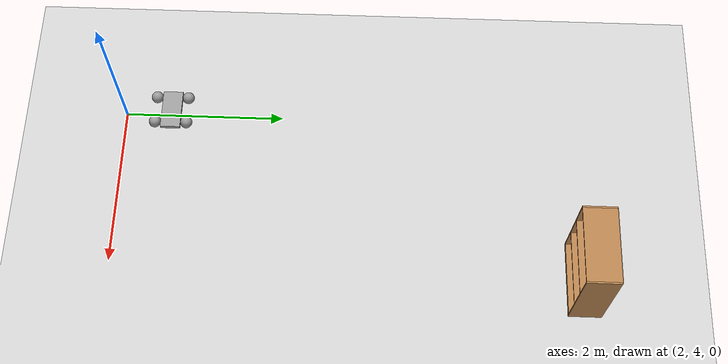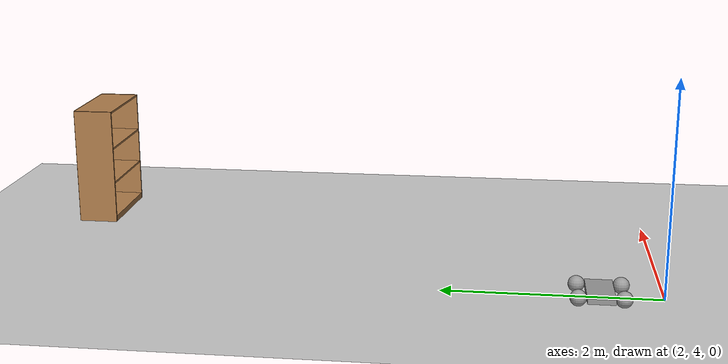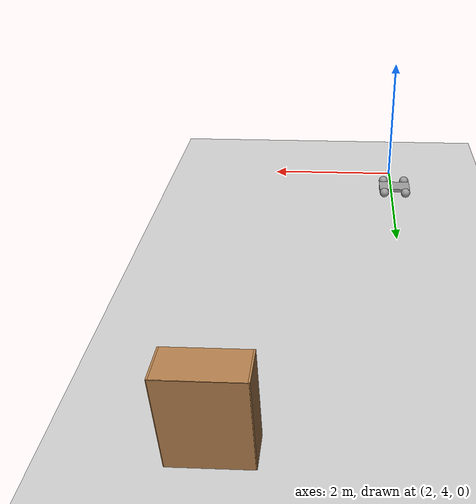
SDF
<sdf version="1.7">
 <world name="default">
  <model name="ground_plane">
   <static>1</static>
   <link name="linkgp">
    <collision name="collision">
     <geometry><plane><normal>0 0 1</normal><size>100 100</size></plane></geometry>
     <surface>
      <contact><collide_bitmask>65535</collide_bitmask></contact>
      <friction><ode><mu>100</mu><mu2>50</mu2></ode></friction>
     </surface>
    </collision>
    <visual name="visual">
     <cast_shadows>0</cast_shadows>
     <geometry><plane><normal>0 0 1</normal><size>100 100</size></plane></geometry>
     <material>
      <script><uri>file://media/materials/scripts/gazebo.material</uri><name>Gazebo/Grey</name></script>
     </material>
    </visual>
   </link>
  </model>
  <model name="bookshelf">
   <static>1</static>
   <link name="linkbs">
    <inertial><mass>1</mass></inertial>
    <collision name="back">
     <pose>0 0.005 0.6 0 -0 0</pose>
     <geometry><box><size>0.9 0.01 1.2</size></box></geometry>
    </collision>
    <visual name="visual1">
     <pose>0 0.005 0.6 0 -0 0</pose>
     <geometry><box><size>0.9 0.01 1.2</size></box></geometry>
     <material>
      <script><uri>file://media/materials/scripts/gazebo.material</uri><name>Gazebo/Wood</name></script>
     </material>
    </visual>
    <collision name="left_side">
     <pose>0.45 -0.195 0.6 0 -0 0</pose>
     <geometry><box><size>0.02 0.4 1.2</size></box></geometry>
    </collision>
    <visual name="visual2">
     <pose>0.45 -0.195 0.6 0 -0 0</pose>
     <geometry><box><size>0.02 0.4 1.2</size></box></geometry>
     <material>
      <script><uri>file://media/materials/scripts/gazebo.material</uri><name>Gazebo/Wood</name></script>
     </material>
    </visual>
    <collision name="right_side">
     <pose>-0.45 -0.195 0.6 0 -0 0</pose>
     <geometry><box><size>0.02 0.4 1.2</size></box></geometry>
    </collision>
    <visual name="visual3">
     <pose>-0.45 -0.195 0.6 0 -0 0</pose>
     <geometry><box><size>0.02 0.4 1.2</size></box></geometry>
     <material>
      <script><uri>file://media/materials/scripts/gazebo.material</uri><name>Gazebo/Wood</name></script>
     </material>
    </visual>
    <collision name="bottom">
     <pose>0 -0.195 0.03 0 -0 0</pose>
     <geometry><box><size>0.88 0.4 0.06</size></box></geometry>
    </collision>
    <visual name="visual4">
     <pose>0 -0.195 0.03 0 -0 0</pose>
     <geometry><box><size>0.88 0.4 0.06</size></box></geometry>
     <material>
      <script><uri>file://media/materials/scripts/gazebo.material</uri><name>Gazebo/Wood</name></script>
     </material>
    </visual>
    <collision name="top">
     <pose>0 -0.195 1.19 0 -0 0</pose>
     <geometry><box><size>0.88 0.4 0.02</size></box></geometry>
    </collision>
    <visual name="visual5">
     <pose>0 -0.195 1.19 0 -0 0</pose>
     <geometry><box><size>0.88 0.4 0.02</size></box></geometry>
     <material>
      <script><uri>file://media/materials/scripts/gazebo.material</uri><name>Gazebo/Wood</name></script>
     </material>
    </visual>
    <collision name="low_shelf">
     <pose>0 -0.195 0.43 0 -0 0</pose>
     <geometry><box><size>0.88 0.4 0.02</size></box></geometry>
    </collision>
    <visual name="visual6">
     <pose>0 -0.195 0.43 0 -0 0</pose>
     <geometry><box><size>0.88 0.4 0.02</size></box></geometry>
     <material>
      <script><uri>file://media/materials/scripts/gazebo.material</uri><name>Gazebo/Wood</name></script>
     </material>
    </visual>
    <collision name="high_shelf">
     <pose>0 -0.195 0.8 0 -0 0</pose>
     <geometry><box><size>0.88 0.4 0.02</size></box></geometry>
    </collision>
    <visual name="visual7">
     <pose>0 -0.195 0.8 0 -0 0</pose>
     <geometry><box><size>0.88 0.4 0.02</size></box></geometry>
     <material>
      <script><uri>file://media/materials/scripts/gazebo.material</uri><name>Gazebo/Wood</name></script>
     </material>
    </visual>
   </link>
   <pose>4.06005 9.9411 0 0 -0 0</pose>
  </model>
  <model name="Sphero">
   <link name="link_0">
    <inertial>
     <mass>1</mass>
     <inertia>
      <ixx>0.166667</ixx>
      <ixy>0</ixy>
      <ixz>0</ixz>
      <iyy>0.166667</iyy>
      <iyz>0</iyz>
      <izz>0.166667</izz>
     </inertia>
    </inertial>
    <pose>-0.084261 -0.070245 -0.0921 0 -0 0</pose>
    <visual name="visual">
     <geometry><box><size>0.5 0.25 0.05</size></box></geometry>
     <material>
      <lighting>1</lighting>
      <script><uri>file://media/materials/scripts/gazebo.material</uri><name>Gazebo/Grey</name></script>
      <shader type="pixel"><normal_map>__default__</normal_map></shader>
      <ambient>0.3 0.3 0.3 1</ambient>
      <diffuse>0.7 0.7 0.7 1</diffuse>
      <specular>0.01 0.01 0.01 1</specular>
      <emissive>0 0 0 1</emissive>
     </material>
    </visual>
    <collision name="collision">
     <geometry><box><size>0.5 0.25 0.05</size></box></geometry>
     <surface>
      <friction>
       <ode><mu>1</mu><mu2>1</mu2><fdir1>0 0 0</fdir1><slip1>0</slip1><slip2>0</slip2></ode>
       <torsional>
        <coefficient>1</coefficient>
        <patch_radius>0</patch_radius>
        <surface_radius>0</surface_radius>
        <use_patch_radius>1</use_patch_radius>
        <ode><slip>0</slip></ode>
       </torsional>
      </friction>
      <bounce><restitution_coefficient>0</restitution_coefficient><threshold>1e+06</threshold></bounce>
      <contact>
       <collide_without_contact>0</collide_without_contact>
       <collide_without_contact_bitmask>1</collide_without_contact_bitmask>
       <collide_bitmask>1</collide_bitmask>
       <ode>
        <soft_cfm>0</soft_cfm>
        <soft_erp>0.2</soft_erp>
        <kp>1e+13</kp>
        <kd>1</kd>
        <max_vel>0.01</max_vel>
        <min_depth>0</min_depth>
       </ode>
       <bullet>
        <split_impulse>1</split_impulse>
        <split_impulse_penetration_threshold>-0.01</split_impulse_penetration_threshold>
        <soft_cfm>0</soft_cfm>
        <soft_erp>0.2</soft_erp>
        <kp>1e+13</kp>
        <kd>1</kd>
       </bullet>
      </contact>
     </surface>
    </collision>
   </link>
   <link name="link_1">
    <inertial>
     <mass>1</mass>
     <inertia><ixx>0.1</ixx><ixy>0</ixy><ixz>0</ixz><iyy>0.1</iyy><iyz>0</iyz><izz>0.1</izz></inertia>
    </inertial>
    <pose>-0.259261 -0.270245 -0.0886 0 -0 0</pose>
    <visual name="visual">
     <geometry><sphere><radius>0.075</radius></sphere></geometry>
     <material>
      <lighting>1</lighting>
      <script><uri>file://media/materials/scripts/gazebo.material</uri><name>Gazebo/Grey</name></script>
      <shader type="pixel"><normal_map>__default__</normal_map></shader>
      <ambient>0.3 0.3 0.3 1</ambient>
      <diffuse>0.7 0.7 0.7 1</diffuse>
      <specular>0.01 0.01 0.01 1</specular>
      <emissive>0 0 0 1</emissive>
     </material>
    </visual>
    <collision name="collision">
     <geometry><sphere><radius>0.075</radius></sphere></geometry>
     <surface>
      <friction>
       <ode><mu>1</mu><mu2>1</mu2><fdir1>0 0 0</fdir1><slip1>0</slip1><slip2>0</slip2></ode>
       <torsional>
        <coefficient>1</coefficient>
        <patch_radius>0</patch_radius>
        <surface_radius>0</surface_radius>
        <use_patch_radius>1</use_patch_radius>
        <ode><slip>0</slip></ode>
       </torsional>
      </friction>
      <bounce><restitution_coefficient>0</restitution_coefficient><threshold>1e+06</threshold></bounce>
      <contact>
       <collide_without_contact>0</collide_without_contact>
       <collide_without_contact_bitmask>1</collide_without_contact_bitmask>
       <collide_bitmask>1</collide_bitmask>
       <ode>
        <soft_cfm>0</soft_cfm>
        <soft_erp>0.2</soft_erp>
        <kp>1e+13</kp>
        <kd>1</kd>
        <max_vel>0.01</max_vel>
        <min_depth>0</min_depth>
       </ode>
       <bullet>
        <split_impulse>1</split_impulse>
        <split_impulse_penetration_threshold>-0.01</split_impulse_penetration_threshold>
        <soft_cfm>0</soft_cfm>
        <soft_erp>0.2</soft_erp>
        <kp>1e+13</kp>
        <kd>1</kd>
       </bullet>
      </contact>
     </surface>
    </collision>
   </link>
   <link name="link_1_clone">
    <inertial>
     <mass>1</mass>
     <inertia><ixx>0.1</ixx><ixy>0</ixy><ixz>0</ixz><iyy>0.1</iyy><iyz>0</iyz><izz>0.1</izz></inertia>
    </inertial>
    <pose>0.090739 -0.270245 -0.0886 0 -0 0</pose>
    <visual name="visual">
     <geometry><sphere><radius>0.075</radius></sphere></geometry>
     <material>
      <lighting>1</lighting>
      <script><uri>file://media/materials/scripts/gazebo.material</uri><name>Gazebo/Grey</name></script>
      <shader type="pixel"><normal_map>__default__</normal_map></shader>
      <ambient>0.3 0.3 0.3 1</ambient>
      <diffuse>0.7 0.7 0.7 1</diffuse>
      <specular>0.01 0.01 0.01 1</specular>
      <emissive>0 0 0 1</emissive>
     </material>
    </visual>
    <collision name="collision">
     <geometry><sphere><radius>0.075</radius></sphere></geometry>
     <surface>
      <friction>
       <ode><mu>1</mu><mu2>1</mu2><fdir1>0 0 0</fdir1><slip1>0</slip1><slip2>0</slip2></ode>
       <torsional>
        <coefficient>1</coefficient>
        <patch_radius>0</patch_radius>
        <surface_radius>0</surface_radius>
        <use_patch_radius>1</use_patch_radius>
        <ode><slip>0</slip></ode>
       </torsional>
      </friction>
      <bounce><restitution_coefficient>0</restitution_coefficient><threshold>1e+06</threshold></bounce>
      <contact>
       <collide_without_contact>0</collide_without_contact>
       <collide_without_contact_bitmask>1</collide_without_contact_bitmask>
       <collide_bitmask>1</collide_bitmask>
       <ode>
        <soft_cfm>0</soft_cfm>
        <soft_erp>0.2</soft_erp>
        <kp>1e+13</kp>
        <kd>1</kd>
        <max_vel>0.01</max_vel>
        <min_depth>0</min_depth>
       </ode>
       <bullet>
        <split_impulse>1</split_impulse>
        <split_impulse_penetration_threshold>-0.01</split_impulse_penetration_threshold>
        <soft_cfm>0</soft_cfm>
        <soft_erp>0.2</soft_erp>
        <kp>1e+13</kp>
        <kd>1</kd>
       </bullet>
      </contact>
     </surface>
    </collision>
   </link>
   <link name="link_1_clone_0">
    <inertial>
     <mass>1</mass>
     <inertia><ixx>0.1</ixx><ixy>0</ixy><ixz>0</ixz><iyy>0.1</iyy><iyz>0</iyz><izz>0.1</izz></inertia>
    </inertial>
    <pose>-0.259261 0.129755 -0.0886 0 -0 0</pose>
    <visual name="visual">
     <geometry><sphere><radius>0.075</radius></sphere></geometry>
     <material>
      <lighting>1</lighting>
      <script><uri>file://media/materials/scripts/gazebo.material</uri><name>Gazebo/Grey</name></script>
      <shader type="pixel"><normal_map>__default__</normal_map></shader>
      <ambient>0.3 0.3 0.3 1</ambient>
      <diffuse>0.7 0.7 0.7 1</diffuse>
      <specular>0.01 0.01 0.01 1</specular>
      <emissive>0 0 0 1</emissive>
     </material>
    </visual>
    <collision name="collision">
     <geometry><sphere><radius>0.075</radius></sphere></geometry>
     <surface>
      <friction>
       <ode><mu>1</mu><mu2>1</mu2><fdir1>0 0 0</fdir1><slip1>0</slip1><slip2>0</slip2></ode>
       <torsional>
        <coefficient>1</coefficient>
        <patch_radius>0</patch_radius>
        <surface_radius>0</surface_radius>
        <use_patch_radius>1</use_patch_radius>
        <ode><slip>0</slip></ode>
       </torsional>
      </friction>
      <bounce><restitution_coefficient>0</restitution_coefficient><threshold>1e+06</threshold></bounce>
      <contact>
       <collide_without_contact>0</collide_without_contact>
       <collide_without_contact_bitmask>1</collide_without_contact_bitmask>
       <collide_bitmask>1</collide_bitmask>
       <ode>
        <soft_cfm>0</soft_cfm>
        <soft_erp>0.2</soft_erp>
        <kp>1e+13</kp>
        <kd>1</kd>
        <max_vel>0.01</max_vel>
        <min_depth>0</min_depth>
       </ode>
       <bullet>
        <split_impulse>1</split_impulse>
        <split_impulse_penetration_threshold>-0.01</split_impulse_penetration_threshold>
        <soft_cfm>0</soft_cfm>
        <soft_erp>0.2</soft_erp>
        <kp>1e+13</kp>
        <kd>1</kd>
       </bullet>
      </contact>
     </surface>
    </collision>
   </link>
   <link name="link_1_clone_1">
    <inertial>
     <mass>1</mass>
     <inertia><ixx>0.1</ixx><ixy>0</ixy><ixz>0</ixz><iyy>0.1</iyy><iyz>0</iyz><izz>0.1</izz></inertia>
    </inertial>
    <pose>0.090739 0.129755 -0.0886 0 -0 0</pose>
    <visual name="visual">
     <geometry><sphere><radius>0.075</radius></sphere></geometry>
     <material>
      <lighting>1</lighting>
      <script><uri>file://media/materials/scripts/gazebo.material</uri><name>Gazebo/Grey</name></script>
      <shader type="pixel"><normal_map>__default__</normal_map></shader>
      <ambient>0.3 0.3 0.3 1</ambient>
      <diffuse>0.7 0.7 0.7 1</diffuse>
      <specular>0.01 0.01 0.01 1</specular>
      <emissive>0 0 0 1</emissive>
     </material>
    </visual>
    <collision name="collision">
     <geometry><sphere><radius>0.075</radius></sphere></geometry>
     <surface>
      <friction>
       <ode><mu>1</mu><mu2>1</mu2><fdir1>0 0 0</fdir1><slip1>0</slip1><slip2>0</slip2></ode>
       <torsional>
        <coefficient>1</coefficient>
        <patch_radius>0</patch_radius>
        <surface_radius>0</surface_radius>
        <use_patch_radius>1</use_patch_radius>
        <ode><slip>0</slip></ode>
       </torsional>
      </friction>
      <bounce><restitution_coefficient>0</restitution_coefficient><threshold>1e+06</threshold></bounce>
      <contact>
       <collide_without_contact>0</collide_without_contact>
       <collide_without_contact_bitmask>1</collide_without_contact_bitmask>
       <collide_bitmask>1</collide_bitmask>
       <ode>
        <soft_cfm>0</soft_cfm>
        <soft_erp>0.2</soft_erp>
        <kp>1e+13</kp>
        <kd>1</kd>
        <max_vel>0.01</max_vel>
        <min_depth>0</min_depth>
       </ode>
       <bullet>
        <split_impulse>1</split_impulse>
        <split_impulse_penetration_threshold>-0.01</split_impulse_penetration_threshold>
        <soft_cfm>0</soft_cfm>
        <soft_erp>0.2</soft_erp>
        <kp>1e+13</kp>
        <kd>1</kd>
       </bullet>
      </contact>
     </surface>
    </collision>
   </link>
   <joint name="Front_Left" type="revolute">
    <parent>link_0</parent>
    <child>link_1</child>
    <axis>
     <xyz>0 1 0</xyz>
     <limit>
      <lower>-1.79769e+308</lower>
      <upper>1.79769e+308</upper>
      <effort>-1</effort>
      <velocity>-1</velocity>
     </limit>
     <dynamics>
      <spring_reference>0</spring_reference>
      <spring_stiffness>0</spring_stiffness>
      <damping>0</damping>
      <friction>0</friction>
     </dynamics>
    </axis>
    <physics>
     <ode><limit><cfm>0</cfm><erp>0.2</erp></limit><suspension><cfm>0</cfm><erp>0.2</erp></suspension></ode>
    </physics>
   </joint>
   <joint name="Rear_Left" type="revolute">
    <parent>link_0</parent>
    <child>link_1_clone</child>
    <axis>
     <xyz>0 1 0</xyz>
     <limit>
      <lower>-1.79769e+308</lower>
      <upper>1.79769e+308</upper>
      <effort>-1</effort>
      <velocity>-1</velocity>
     </limit>
     <dynamics>
      <spring_reference>0</spring_reference>
      <spring_stiffness>0</spring_stiffness>
      <damping>0</damping>
      <friction>0</friction>
     </dynamics>
    </axis>
    <physics>
     <ode><limit><cfm>0</cfm><erp>0.2</erp></limit><suspension><cfm>0</cfm><erp>0.2</erp></suspension></ode>
    </physics>
   </joint>
   <joint name="Front_Right" type="revolute">
    <parent>link_0</parent>
    <child>link_1_clone_0</child>
    <axis>
     <xyz>0 1 0</xyz>
     <limit>
      <lower>-1.79769e+308</lower>
      <upper>1.79769e+308</upper>
      <effort>-1</effort>
      <velocity>-1</velocity>
     </limit>
     <dynamics>
      <spring_reference>0</spring_reference>
      <spring_stiffness>0</spring_stiffness>
      <damping>0</damping>
      <friction>0</friction>
     </dynamics>
    </axis>
    <physics>
     <ode><limit><cfm>0</cfm><erp>0.2</erp></limit><suspension><cfm>0</cfm><erp>0.2</erp></suspension></ode>
    </physics>
   </joint>
   <joint name="Rear_Right" type="revolute">
    <parent>link_0</parent>
    <child>link_1_clone_1</child>
    <axis>
     <xyz>0 1 0</xyz>
     <limit>
      <lower>-1.79769e+308</lower>
      <upper>1.79769e+308</upper>
      <effort>-1</effort>
      <velocity>-1</velocity>
     </limit>
     <dynamics>
      <spring_reference>0</spring_reference>
      <spring_stiffness>0</spring_stiffness>
      <damping>0</damping>
      <friction>0</friction>
     </dynamics>
    </axis>
    <physics>
     <ode><limit><cfm>0</cfm><erp>0.2</erp></limit><suspension><cfm>0</cfm><erp>0.2</erp></suspension></ode>
    </physics>
   </joint>
   <static>0</static>
   <pose>2.03635 4.64452 0.1636 0 -0 7e-06</pose>
  </model>
 </world>
</sdf>
